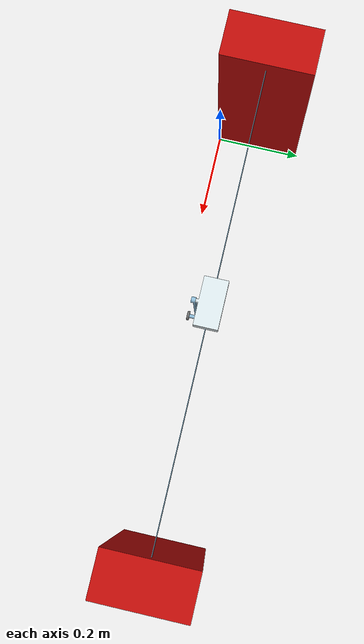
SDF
<sdf version="1.6">
    <model name="cartpole_robot">
        <link name="rail">
            <frame name="rail_frame"><pose>0 0 0 0 -0 0</pose></frame>
            <visual name="rail_0_rail_visual">
                <pose>0.498292 0.0949833 0.468696 0 -0 -2.77556e-16</pose>
                <geometry>
                <mesh><uri>model://cartpole/meshes/rail.stl</uri></mesh>
                </geometry>
                <material><ambient>0.615686 0.811765 0.929412 1</ambient><diffuse>0.615686 0.811765 0.929412 1</diffuse><specular>0.1 0.1 0.1 1</specular><emissive>0 0 0 0</emissive></material>
            </visual>
            <collision name="rail_0_rail_visual">
                <pose>0.498292 0.0949833 0.468696 0 -0 -2.77556e-16</pose>
                <geometry>
                <mesh><uri>model://cartpole/meshes/rail.stl</uri></mesh>
                </geometry>
            </collision>
            <visual name="rail_1_stand_visual">
                <pose>1.09729 0.0949833 0.248696 0 -0 3.14159</pose>
                <geometry>
                <mesh><uri>model://cartpole/meshes/stand.stl</uri></mesh>
                </geometry>
                <material><ambient>0.815686 0.054902 0.0431373 1</ambient><diffuse>0.815686 0.054902 0.0431373 1</diffuse><specular>0.1 0.1 0.1 1</specular><emissive>0 0 0 0</emissive></material>
            </visual>
            <collision name="rail_1_stand_visual">
                <pose>1.09729 0.0949833 0.248696 0 -0 3.14159</pose>
                <geometry>
                <mesh><uri>model://cartpole/meshes/stand.stl</uri></mesh>
                </geometry>
            </collision>
            <visual name="rail_2_stand_visual">
                <pose>-0.100708 0.0949833 0.248696 0 -0 -2.77556e-16</pose>
                <geometry>
                <mesh><uri>model://cartpole/meshes/stand.stl</uri></mesh>
                </geometry>
                <material><ambient>0.815686 0.054902 0.0431373 1</ambient><diffuse>0.815686 0.054902 0.0431373 1</diffuse><specular>0.1 0.1 0.1 1</specular><emissive>0 0 0 0</emissive></material>
            </visual>
            <collision name="rail_2_stand_visual">
                <pose>-0.100708 0.0949833 0.248696 0 -0 -2.77556e-16</pose>
                <geometry>
                <mesh><uri>model://cartpole/meshes/stand.stl</uri></mesh>
                </geometry>
            </collision>
            <inertial>
                <pose frame="rail_frame">0.498292 0.0949833 0.24872 0 0 0</pose>
                <mass>227.005</mass>
                <inertia><ixx>5.48654</ixx><ixy>2.43677e-14</ixy><ixz>3.80451e-14</ixz><iyy>73.3331</iyy><iyz>-1.40516e-29</iyz><izz>69.3598</izz></inertia>
            </inertial>
        </link>

        <link name="cart">
            <pose>0.498292 0.0949833 0.465805 0 -0 0</pose>

            <visual name="cart_0_cart_visual">
                <geometry>
                <mesh><uri>model://cartpole/meshes/cart.stl</uri></mesh>
                </geometry>
                <material><ambient>0.937255 0.988235 1 1</ambient><diffuse>0.937255 0.988235 1 1</diffuse><specular>0.1 0.1 0.1 1</specular><emissive>0 0 0 0</emissive></material>
            </visual>
            <inertial>
                <mass>0.984703</mass>
                <inertia><ixx>0.000261653</ixx><ixy>0</ixy><ixz>0</ixz><iyy>0.000866578</iyy><iyz>-4.62921e-09</iyz><izz>0.00102643</izz></inertia>
            </inertial>
        </link>

        <link name="pole">
            <pose>0.498292 0.0449833 0.258305 0 -0 0</pose>

            <visual name="pole_0_weight_visual">
                <geometry>
                <mesh><uri>model://cartpole/meshes/weight.stl</uri></mesh>
                </geometry>
                <material><ambient>0.470588 0.47451 0.47451 1</ambient><diffuse>0.470588 0.47451 0.47451 1</diffuse><specular>0.1 0.1 0.1 1</specular><emissive>0 0 0 0</emissive></material>
            </visual>
            <visual name="pole_1_pole_visual">
                <pose>0.006 0.019 0.22 3.14159 -0 3.14159</pose>
                <geometry>
                <mesh><uri>model://cartpole/meshes/pole.stl</uri></mesh>
                </geometry>
                <material><ambient>0.615686 0.811765 0.929412 1</ambient><diffuse>0.615686 0.811765 0.929412 1</diffuse><specular>0.1 0.1 0.1 1</specular><emissive>0 0 0 0</emissive></material>
            </visual>
            <inertial>
                <pose>0 0.0048949 0.04116 0 0 0</pose>
                <mass>0.0254927</mass>
                <inertia><ixx>0.00012505</ixx><ixy>-4.94907e-12</ixy><ixz>-4.88588e-11</ixz><iyy>0.000123402</iyy><iyz>-1.23487e-05</iyz><izz>2.81731e-06</izz></inertia>
            </inertial>
        </link>

        <joint name="revolute_pole" type="revolute">
            <pose>0 0 0.22 -1.5708 -0 3.14159</pose>
            <parent>cart</parent>
            <child>pole</child>
            <axis>
            <xyz>0 0 1</xyz>
            <limit><effort>1</effort><velocity>20</velocity></limit>
            </axis>
        </joint>

        <joint name="slider_cart" type="prismatic">
            <pose>0.498292 0.0949833 0.468696 -1.5708 -0 1.5708</pose>
            <parent>rail</parent>
            <child>cart</child>
            <axis>
            <xyz>0 0 1</xyz>
            <limit><effort>1</effort><velocity>20</velocity><lower>-0.42</lower><upper>0.42</upper></limit>
            </axis>
        </joint>

    </model>
</sdf>
